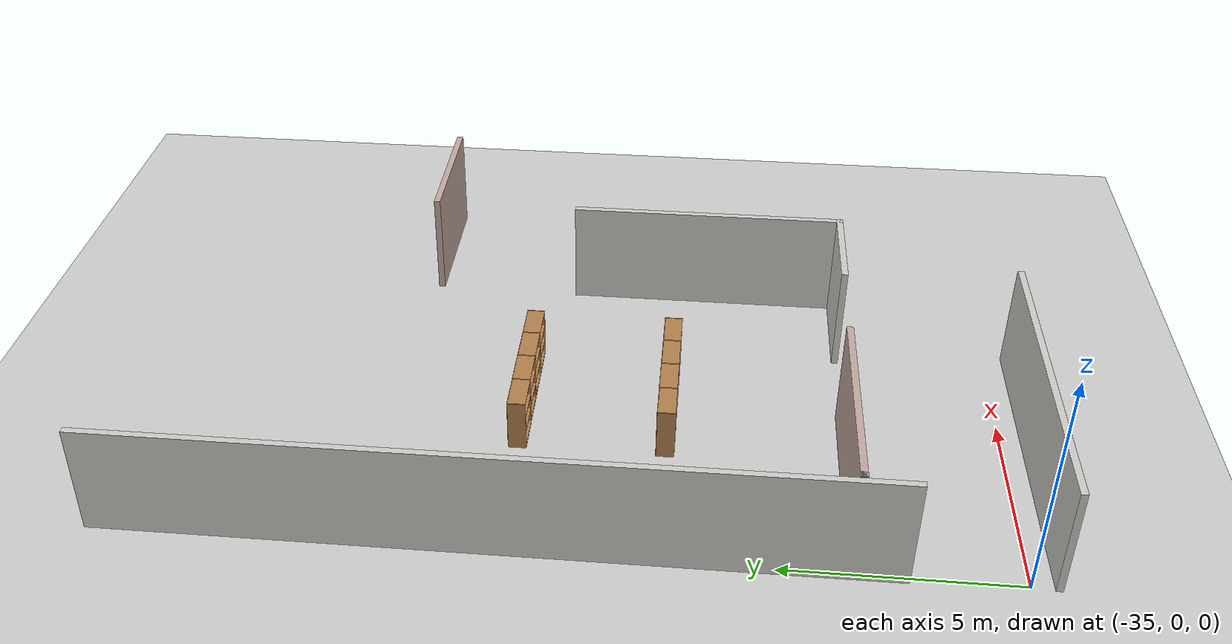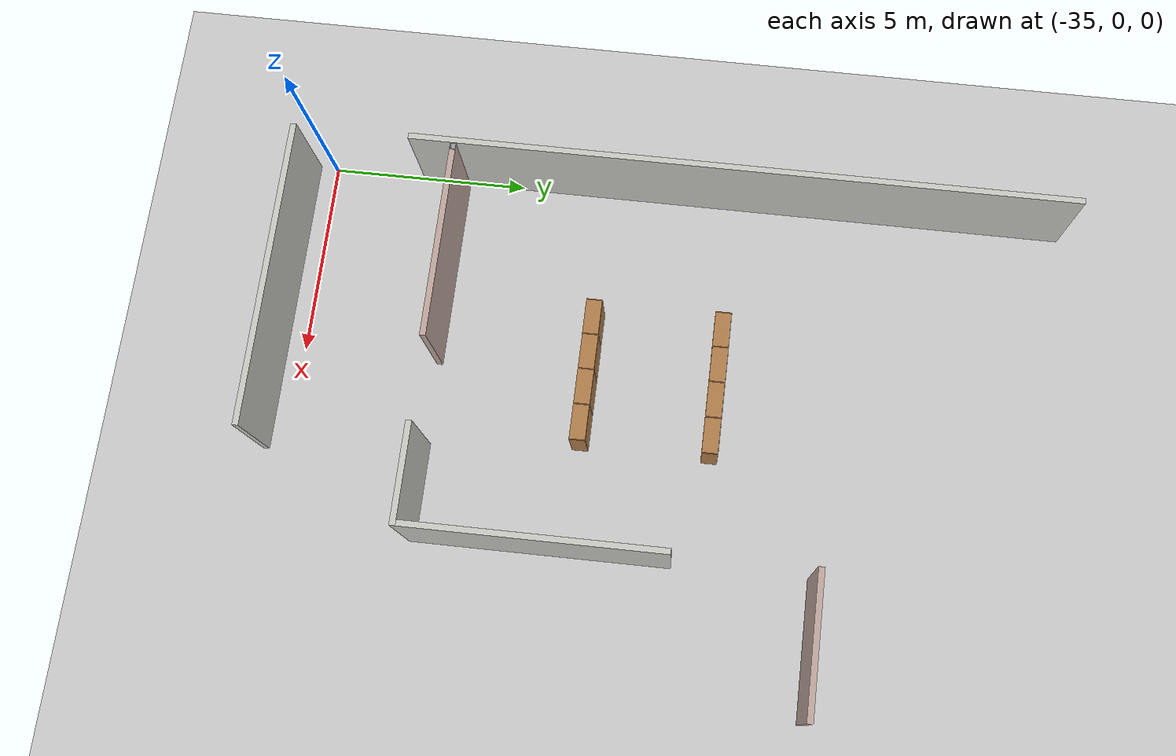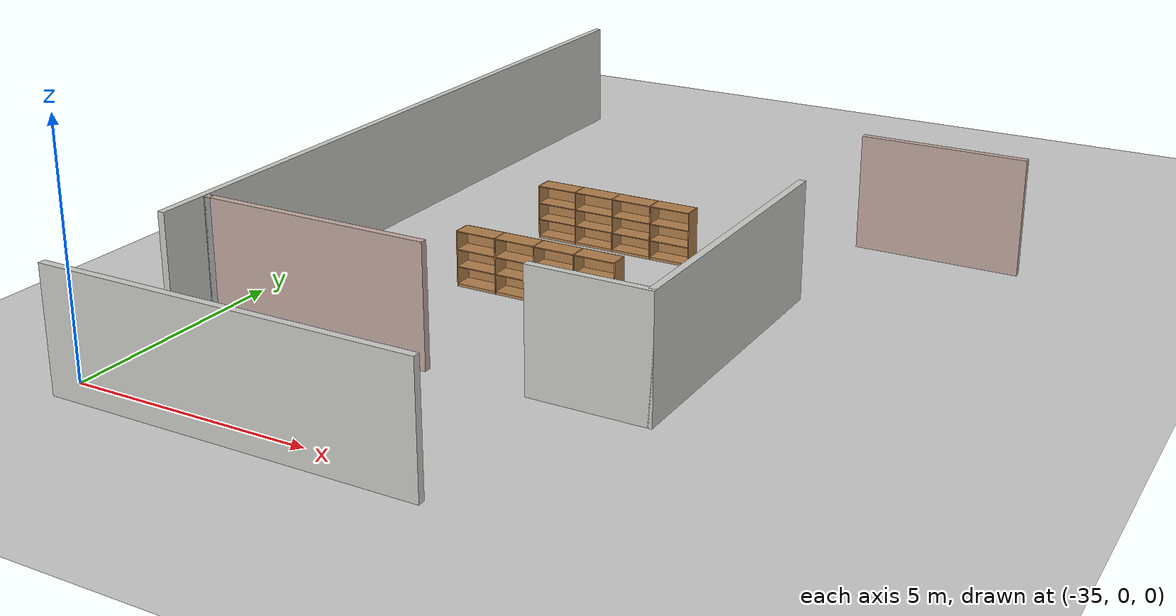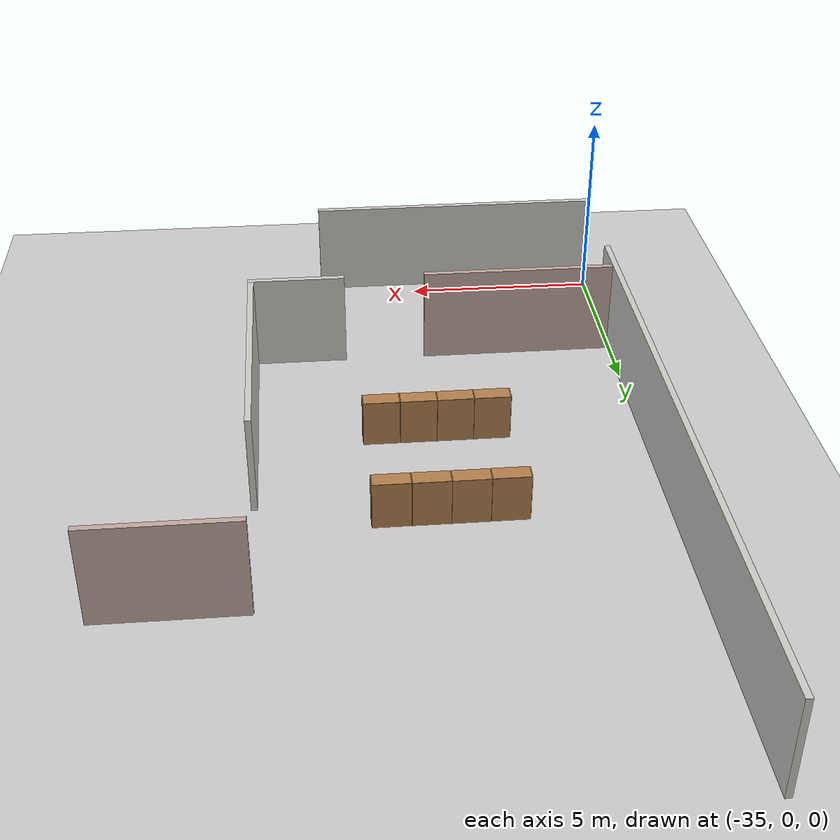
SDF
<sdf version="1.6">
 <world name="default">
  <model name="ground_plane">
   <static>1</static>
   <link name="link">
    <collision name="collision">
     <geometry><plane><normal>0 0 1</normal><size>100 100</size></plane></geometry>
     <surface><friction><ode><mu>100</mu><mu2>50</mu2></ode></friction></surface>
    </collision>
    <visual name="visual">
     <cast_shadows>0</cast_shadows>
     <geometry><plane><normal>0 0 1</normal><size>100 100</size></plane></geometry>
     <material>
      <script><uri>file://media/materials/scripts/gazebo.material</uri><name>Gazebo/Grey</name></script>
     </material>
    </visual>
   </link>
  </model>
  <model name="floor">
   <link name="Wall_13">
    <pose>-36.3 12 0 0 0 -1.5708</pose>
    <visual name="Wall_13_Visual">
     <pose>0 0 1.25 0 -0 0</pose>
     <geometry><box><size>16.75 0.15 2.5</size></box></geometry>
     <material>
      <script><uri>file://media/materials/scripts/gazebo.material</uri><name>Gazebo/CeilingTiled</name></script>
      <ambient>0.760784 0.662745 0.627451 1</ambient>
     </material>
     <meta><layer>0</layer></meta>
    </visual>
    <collision name="Wall_13_Collision">
     <pose>0 0 1.25 0 -0 0</pose>
     <geometry><box><size>16.75 0.15 2.5</size></box></geometry>
     <surface>
      <friction>
       <ode><mu>1</mu><mu2>1</mu2><fdir1>0 0 0</fdir1><slip1>0</slip1><slip2>0</slip2></ode>
       <torsional>
        <coefficient>1</coefficient>
        <patch_radius>0</patch_radius>
        <surface_radius>0</surface_radius>
        <use_patch_radius>1</use_patch_radius>
        <ode><slip>0</slip></ode>
       </torsional>
      </friction>
      <bounce><restitution_coefficient>0</restitution_coefficient><threshold>1e+06</threshold></bounce>
      <contact>
       <collide_without_contact>0</collide_without_contact>
       <collide_without_contact_bitmask>1</collide_without_contact_bitmask>
       <collide_bitmask>1</collide_bitmask>
       <ode>
        <soft_cfm>0</soft_cfm>
        <soft_erp>0.2</soft_erp>
        <kp>1e+13</kp>
        <kd>1</kd>
        <max_vel>0.01</max_vel>
        <min_depth>0</min_depth>
       </ode>
       <bullet>
        <split_impulse>1</split_impulse>
        <split_impulse_penetration_threshold>-0.01</split_impulse_penetration_threshold>
        <soft_cfm>0</soft_cfm>
        <soft_erp>0.2</soft_erp>
        <kp>1e+13</kp>
        <kd>1</kd>
       </bullet>
      </contact>
     </surface>
    </collision>
   </link>
   <link name="Wall_17">
    <pose>-33.7057 4.7615 0 0 -0 3.14159</pose>
    <visual name="Wall_17_Visual">
     <pose>0 0 1.25 0 -0 0</pose>
     <geometry><box><size>5 0.15 2.5</size></box></geometry>
     <material>
      <script><uri>file://media/materials/scripts/gazebo.material</uri><name>Gazebo/Grey</name></script>
      <ambient>0.760784 0.662745 0.627451 1</ambient>
     </material>
     <meta><layer>0</layer></meta>
    </visual>
    <collision name="Wall_17_Collision">
     <pose>0 0 1.25 0 -0 0</pose>
     <geometry><box><size>5 0.15 2.5</size></box></geometry>
     <surface>
      <friction>
       <ode><mu>1</mu><mu2>1</mu2><fdir1>0 0 0</fdir1><slip1>0</slip1><slip2>0</slip2></ode>
       <torsional>
        <coefficient>1</coefficient>
        <patch_radius>0</patch_radius>
        <surface_radius>0</surface_radius>
        <use_patch_radius>1</use_patch_radius>
        <ode><slip>0</slip></ode>
       </torsional>
      </friction>
      <bounce><restitution_coefficient>0</restitution_coefficient><threshold>1e+06</threshold></bounce>
      <contact>
       <collide_without_contact>0</collide_without_contact>
       <collide_without_contact_bitmask>1</collide_without_contact_bitmask>
       <collide_bitmask>1</collide_bitmask>
       <ode>
        <soft_cfm>0</soft_cfm>
        <soft_erp>0.2</soft_erp>
        <kp>1e+13</kp>
        <kd>1</kd>
        <max_vel>0.01</max_vel>
        <min_depth>0</min_depth>
       </ode>
       <bullet>
        <split_impulse>1</split_impulse>
        <split_impulse_penetration_threshold>-0.01</split_impulse_penetration_threshold>
        <soft_cfm>0</soft_cfm>
        <soft_erp>0.2</soft_erp>
        <kp>1e+13</kp>
        <kd>1</kd>
       </bullet>
      </contact>
     </surface>
    </collision>
   </link>
   <link name="Wall_18">
    <pose>-36.1307 4.7615 0 0 -0 0</pose>
    <visual name="Wall_18_Visual">
     <pose>0 0 1.25 0 -0 0</pose>
     <geometry><box><size>0.15 0.15 2.5</size></box></geometry>
     <material>
      <script><uri>file://media/materials/scripts/gazebo.material</uri><name>Gazebo/Grey</name></script>
      <ambient>1 1 1 1</ambient>
     </material>
     <meta><layer>0</layer></meta>
    </visual>
    <collision name="Wall_18_Collision">
     <pose>0 0 1.25 0 -0 0</pose>
     <geometry><box><size>0.15 0.15 2.5</size></box></geometry>
     <surface>
      <friction>
       <ode><mu>1</mu><mu2>1</mu2><fdir1>0 0 0</fdir1><slip1>0</slip1><slip2>0</slip2></ode>
       <torsional>
        <coefficient>1</coefficient>
        <patch_radius>0</patch_radius>
        <surface_radius>0</surface_radius>
        <use_patch_radius>1</use_patch_radius>
        <ode><slip>0</slip></ode>
       </torsional>
      </friction>
      <bounce><restitution_coefficient>0</restitution_coefficient><threshold>1e+06</threshold></bounce>
      <contact>
       <collide_without_contact>0</collide_without_contact>
       <collide_without_contact_bitmask>1</collide_without_contact_bitmask>
       <collide_bitmask>1</collide_bitmask>
       <ode>
        <soft_cfm>0</soft_cfm>
        <soft_erp>0.2</soft_erp>
        <kp>1e+13</kp>
        <kd>1</kd>
        <max_vel>0.01</max_vel>
        <min_depth>0</min_depth>
       </ode>
       <bullet>
        <split_impulse>1</split_impulse>
        <split_impulse_penetration_threshold>-0.01</split_impulse_penetration_threshold>
        <soft_cfm>0</soft_cfm>
        <soft_erp>0.2</soft_erp>
        <kp>1e+13</kp>
        <kd>1</kd>
       </bullet>
      </contact>
     </surface>
    </collision>
   </link>
   <link name="Wall_19">
    <pose>-36.1257 4.7615 0 0 -0 0</pose>
    <visual name="Wall_19_Visual">
     <pose>0 0 1.25 0 -0 0</pose>
     <geometry><box><size>0.16 0.15 2.5</size></box></geometry>
     <material>
      <script><uri>file://media/materials/scripts/gazebo.material</uri><name>Gazebo/Grey</name></script>
      <ambient>1 1 1 1</ambient>
     </material>
     <meta><layer>0</layer></meta>
    </visual>
    <collision name="Wall_19_Collision">
     <pose>0 0 1.25 0 -0 0</pose>
     <geometry><box><size>0.16 0.15 2.5</size></box></geometry>
     <surface>
      <friction>
       <ode><mu>1</mu><mu2>1</mu2><fdir1>0 0 0</fdir1><slip1>0</slip1><slip2>0</slip2></ode>
       <torsional>
        <coefficient>1</coefficient>
        <patch_radius>0</patch_radius>
        <surface_radius>0</surface_radius>
        <use_patch_radius>1</use_patch_radius>
        <ode><slip>0</slip></ode>
       </torsional>
      </friction>
      <bounce><restitution_coefficient>0</restitution_coefficient><threshold>1e+06</threshold></bounce>
      <contact>
       <collide_without_contact>0</collide_without_contact>
       <collide_without_contact_bitmask>1</collide_without_contact_bitmask>
       <collide_bitmask>1</collide_bitmask>
       <ode>
        <soft_cfm>0</soft_cfm>
        <soft_erp>0.2</soft_erp>
        <kp>1e+13</kp>
        <kd>1</kd>
        <max_vel>0.01</max_vel>
        <min_depth>0</min_depth>
       </ode>
       <bullet>
        <split_impulse>1</split_impulse>
        <split_impulse_penetration_threshold>-0.01</split_impulse_penetration_threshold>
        <soft_cfm>0</soft_cfm>
        <soft_erp>0.2</soft_erp>
        <kp>1e+13</kp>
        <kd>1</kd>
       </bullet>
      </contact>
     </surface>
    </collision>
   </link>
   <link name="Wall_20">
    <pose>-36.1257 4.7615 0 0 -0 3.14159</pose>
    <visual name="Wall_20_Visual">
     <pose>0 0 1.25 0 -0 0</pose>
     <geometry><box><size>0.16 0.15 2.5</size></box></geometry>
     <material>
      <script><uri>file://media/materials/scripts/gazebo.material</uri><name>Gazebo/Grey</name></script>
      <ambient>1 1 1 1</ambient>
     </material>
     <meta><layer>0</layer></meta>
    </visual>
    <collision name="Wall_20_Collision">
     <pose>0 0 1.25 0 -0 0</pose>
     <geometry><box><size>0.16 0.15 2.5</size></box></geometry>
     <surface>
      <friction>
       <ode><mu>1</mu><mu2>1</mu2><fdir1>0 0 0</fdir1><slip1>0</slip1><slip2>0</slip2></ode>
       <torsional>
        <coefficient>1</coefficient>
        <patch_radius>0</patch_radius>
        <surface_radius>0</surface_radius>
        <use_patch_radius>1</use_patch_radius>
        <ode><slip>0</slip></ode>
       </torsional>
      </friction>
      <bounce><restitution_coefficient>0</restitution_coefficient><threshold>1e+06</threshold></bounce>
      <contact>
       <collide_without_contact>0</collide_without_contact>
       <collide_without_contact_bitmask>1</collide_without_contact_bitmask>
       <collide_bitmask>1</collide_bitmask>
       <ode>
        <soft_cfm>0</soft_cfm>
        <soft_erp>0.2</soft_erp>
        <kp>1e+13</kp>
        <kd>1</kd>
        <max_vel>0.01</max_vel>
        <min_depth>0</min_depth>
       </ode>
       <bullet>
        <split_impulse>1</split_impulse>
        <split_impulse_penetration_threshold>-0.01</split_impulse_penetration_threshold>
        <soft_cfm>0</soft_cfm>
        <soft_erp>0.2</soft_erp>
        <kp>1e+13</kp>
        <kd>1</kd>
       </bullet>
      </contact>
     </surface>
    </collision>
   </link>
   <link name="Wall_22">
    <pose>-32.4403 0.737728 0 0 -0 0</pose>
    <visual name="Wall_22_Visual">
     <pose>0 0 1.25 0 -0 0</pose>
     <geometry><box><size>7.75 0.15 2.5</size></box></geometry>
     <material>
      <script><uri>file://media/materials/scripts/gazebo.material</uri><name>Gazebo/CeilingTiled</name></script>
      <ambient>0.760784 0.662745 0.627451 1</ambient>
     </material>
     <meta><layer>0</layer></meta>
    </visual>
    <collision name="Wall_22_Collision">
     <pose>0 0 1.25 0 -0 0</pose>
     <geometry><box><size>7.75 0.15 2.5</size></box></geometry>
     <surface>
      <friction>
       <ode><mu>1</mu><mu2>1</mu2><fdir1>0 0 0</fdir1><slip1>0</slip1><slip2>0</slip2></ode>
       <torsional>
        <coefficient>1</coefficient>
        <patch_radius>0</patch_radius>
        <surface_radius>0</surface_radius>
        <use_patch_radius>1</use_patch_radius>
        <ode><slip>0</slip></ode>
       </torsional>
      </friction>
      <bounce><restitution_coefficient>0</restitution_coefficient><threshold>1e+06</threshold></bounce>
      <contact>
       <collide_without_contact>0</collide_without_contact>
       <collide_without_contact_bitmask>1</collide_without_contact_bitmask>
       <collide_bitmask>1</collide_bitmask>
       <ode>
        <soft_cfm>0</soft_cfm>
        <soft_erp>0.2</soft_erp>
        <kp>1e+13</kp>
        <kd>1</kd>
        <max_vel>0.01</max_vel>
        <min_depth>0</min_depth>
       </ode>
       <bullet>
        <split_impulse>1</split_impulse>
        <split_impulse_penetration_threshold>-0.01</split_impulse_penetration_threshold>
        <soft_cfm>0</soft_cfm>
        <soft_erp>0.2</soft_erp>
        <kp>1e+13</kp>
        <kd>1</kd>
       </bullet>
      </contact>
     </surface>
    </collision>
   </link>
   <link name="Wall_30">
    <pose>-27.8599 4.7615 0 0 -0 0</pose>
    <visual name="Wall_30_Visual">
     <pose>0 0 1.25 0 -0 0</pose>
     <geometry><box><size>2.5 0.15 2.5</size></box></geometry>
     <material>
      <script><uri>file://media/materials/scripts/gazebo.material</uri><name>Gazebo/CeilingTiled</name></script>
      <ambient>0.760784 0.662745 0.627451 1</ambient>
     </material>
     <meta><layer>0</layer></meta>
    </visual>
    <collision name="Wall_30_Collision">
     <pose>0 0 1.25 0 -0 0</pose>
     <geometry><box><size>2.5 0.15 2.5</size></box></geometry>
     <surface>
      <friction>
       <ode><mu>1</mu><mu2>1</mu2><fdir1>0 0 0</fdir1><slip1>0</slip1><slip2>0</slip2></ode>
       <torsional>
        <coefficient>1</coefficient>
        <patch_radius>0</patch_radius>
        <surface_radius>0</surface_radius>
        <use_patch_radius>1</use_patch_radius>
        <ode><slip>0</slip></ode>
       </torsional>
      </friction>
      <bounce><restitution_coefficient>0</restitution_coefficient><threshold>1e+06</threshold></bounce>
      <contact>
       <collide_without_contact>0</collide_without_contact>
       <collide_without_contact_bitmask>1</collide_without_contact_bitmask>
       <collide_bitmask>1</collide_bitmask>
       <ode>
        <soft_cfm>0</soft_cfm>
        <soft_erp>0.2</soft_erp>
        <kp>1e+13</kp>
        <kd>1</kd>
        <max_vel>0.01</max_vel>
        <min_depth>0</min_depth>
       </ode>
       <bullet>
        <split_impulse>1</split_impulse>
        <split_impulse_penetration_threshold>-0.01</split_impulse_penetration_threshold>
        <soft_cfm>0</soft_cfm>
        <soft_erp>0.2</soft_erp>
        <kp>1e+13</kp>
        <kd>1</kd>
       </bullet>
      </contact>
     </surface>
    </collision>
   </link>
   <link name="Wall_31">
    <pose>-26.6849 7.9365 0 0 -0 1.5708</pose>
    <visual name="Wall_31_Visual">
     <pose>0 0 1.25 0 -0 0</pose>
     <geometry><box><size>6.5 0.15 2.5</size></box></geometry>
     <material>
      <script><uri>file://media/materials/scripts/gazebo.material</uri><name>Gazebo/CeilingTiled</name></script>
      <ambient>0.760784 0.662745 0.627451 1</ambient>
     </material>
     <meta><layer>0</layer></meta>
    </visual>
    <collision name="Wall_31_Collision">
     <pose>0 0 1.25 0 -0 0</pose>
     <geometry><box><size>6.5 0.15 2.5</size></box></geometry>
     <surface>
      <friction>
       <ode><mu>1</mu><mu2>1</mu2><fdir1>0 0 0</fdir1><slip1>0</slip1><slip2>0</slip2></ode>
       <torsional>
        <coefficient>1</coefficient>
        <patch_radius>0</patch_radius>
        <surface_radius>0</surface_radius>
        <use_patch_radius>1</use_patch_radius>
        <ode><slip>0</slip></ode>
       </torsional>
      </friction>
      <bounce><restitution_coefficient>0</restitution_coefficient><threshold>1e+06</threshold></bounce>
      <contact>
       <collide_without_contact>0</collide_without_contact>
       <collide_without_contact_bitmask>1</collide_without_contact_bitmask>
       <collide_bitmask>1</collide_bitmask>
       <ode>
        <soft_cfm>0</soft_cfm>
        <soft_erp>0.2</soft_erp>
        <kp>1e+13</kp>
        <kd>1</kd>
        <max_vel>0.01</max_vel>
        <min_depth>0</min_depth>
       </ode>
       <bullet>
        <split_impulse>1</split_impulse>
        <split_impulse_penetration_threshold>-0.01</split_impulse_penetration_threshold>
        <soft_cfm>0</soft_cfm>
        <soft_erp>0.2</soft_erp>
        <kp>1e+13</kp>
        <kd>1</kd>
       </bullet>
      </contact>
     </surface>
    </collision>
   </link>
   <link name="Wall_58">
    <pose>-24.9523 14.6342 0 0 -0 0</pose>
    <visual name="Wall_58_Visual">
     <pose>0 0 1.25 0 -0 0</pose>
     <geometry><box><size>3.5 0.15 2.5</size></box></geometry>
     <material>
      <script><uri>file://media/materials/scripts/gazebo.material</uri><name>Gazebo/Grey</name></script>
      <ambient>0.760784 0.662745 0.627451 1</ambient>
     </material>
     <meta><layer>0</layer></meta>
    </visual>
    <collision name="Wall_58_Collision">
     <pose>0 0 1.25 0 -0 0</pose>
     <geometry><box><size>3.5 0.15 2.5</size></box></geometry>
     <surface>
      <friction>
       <ode><mu>1</mu><mu2>1</mu2><fdir1>0 0 0</fdir1><slip1>0</slip1><slip2>0</slip2></ode>
       <torsional>
        <coefficient>1</coefficient>
        <patch_radius>0</patch_radius>
        <surface_radius>0</surface_radius>
        <use_patch_radius>1</use_patch_radius>
        <ode><slip>0</slip></ode>
       </torsional>
      </friction>
      <bounce><restitution_coefficient>0</restitution_coefficient><threshold>1e+06</threshold></bounce>
      <contact>
       <collide_without_contact>0</collide_without_contact>
       <collide_without_contact_bitmask>1</collide_without_contact_bitmask>
       <collide_bitmask>1</collide_bitmask>
       <ode>
        <soft_cfm>0</soft_cfm>
        <soft_erp>0.2</soft_erp>
        <kp>1e+13</kp>
        <kd>1</kd>
        <max_vel>0.01</max_vel>
        <min_depth>0</min_depth>
       </ode>
       <bullet>
        <split_impulse>1</split_impulse>
        <split_impulse_penetration_threshold>-0.01</split_impulse_penetration_threshold>
        <soft_cfm>0</soft_cfm>
        <soft_erp>0.2</soft_erp>
        <kp>1e+13</kp>
        <kd>1</kd>
       </bullet>
      </contact>
     </surface>
    </collision>
   </link>
   <static>1</static>
   <pose>1.26361 -1.27025 0 0 -0 0</pose>
  </model>
  <model name="Bookshelf-4_clone_28">
   <model name="bookshelf">
    <static>1</static>
    <link name="link">
     <inertial><mass>1</mass></inertial>
     <collision name="back">
      <pose>0 0.005 0.6 0 -0 0</pose>
      <geometry><box><size>0.9 0.01 1.2</size></box></geometry>
     </collision>
     <visual name="visual1">
      <pose>0 0.005 0.6 0 -0 0</pose>
      <geometry><box><size>0.9 0.01 1.2</size></box></geometry>
      <material>
       <script><uri>file://media/materials/scripts/gazebo.material</uri><name>Gazebo/Wood</name></script>
      </material>
     </visual>
     <collision name="left_side">
      <pose>0.45 -0.195 0.6 0 -0 0</pose>
      <geometry><box><size>0.02 0.4 1.2</size></box></geometry>
     </collision>
     <visual name="visual2">
      <pose>0.45 -0.195 0.6 0 -0 0</pose>
      <geometry><box><size>0.02 0.4 1.2</size></box></geometry>
      <material>
       <script><uri>file://media/materials/scripts/gazebo.material</uri><name>Gazebo/Wood</name></script>
      </material>
     </visual>
     <collision name="right_side">
      <pose>-0.45 -0.195 0.6 0 -0 0</pose>
      <geometry><box><size>0.02 0.4 1.2</size></box></geometry>
     </collision>
     <visual name="visual3">
      <pose>-0.45 -0.195 0.6 0 -0 0</pose>
      <geometry><box><size>0.02 0.4 1.2</size></box></geometry>
      <material>
       <script><uri>file://media/materials/scripts/gazebo.material</uri><name>Gazebo/Wood</name></script>
      </material>
     </visual>
     <collision name="bottom">
      <pose>0 -0.195 0.03 0 -0 0</pose>
      <geometry><box><size>0.88 0.4 0.06</size></box></geometry>
     </collision>
     <visual name="visual4">
      <pose>0 -0.195 0.03 0 -0 0</pose>
      <geometry><box><size>0.88 0.4 0.06</size></box></geometry>
      <material>
       <script><uri>file://media/materials/scripts/gazebo.material</uri><name>Gazebo/Wood</name></script>
      </material>
     </visual>
     <collision name="top">
      <pose>0 -0.195 1.19 0 -0 0</pose>
      <geometry><box><size>0.88 0.4 0.02</size></box></geometry>
     </collision>
     <visual name="visual5">
      <pose>0 -0.195 1.19 0 -0 0</pose>
      <geometry><box><size>0.88 0.4 0.02</size></box></geometry>
      <material>
       <script><uri>file://media/materials/scripts/gazebo.material</uri><name>Gazebo/Wood</name></script>
      </material>
     </visual>
     <collision name="low_shelf">
      <pose>0 -0.195 0.43 0 -0 0</pose>
      <geometry><box><size>0.88 0.4 0.02</size></box></geometry>
     </collision>
     <visual name="visual6">
      <pose>0 -0.195 0.43 0 -0 0</pose>
      <geometry><box><size>0.88 0.4 0.02</size></box></geometry>
      <material>
       <script><uri>file://media/materials/scripts/gazebo.material</uri><name>Gazebo/Wood</name></script>
      </material>
     </visual>
     <collision name="high_shelf">
      <pose>0 -0.195 0.8 0 -0 0</pose>
      <geometry><box><size>0.88 0.4 0.02</size></box></geometry>
     </collision>
     <visual name="visual7">
      <pose>0 -0.195 0.8 0 -0 0</pose>
      <geometry><box><size>0.88 0.4 0.02</size></box></geometry>
      <material>
       <script><uri>file://media/materials/scripts/gazebo.material</uri><name>Gazebo/Wood</name></script>
      </material>
     </visual>
    </link>
    <pose>-1.35671 -0.002097 0 0 -0 0</pose>
   </model>
   <model name="bookshelf_0">
    <static>1</static>
    <link name="link">
     <inertial><mass>1</mass></inertial>
     <collision name="back">
      <pose>0 0.005 0.6 0 -0 0</pose>
      <geometry><box><size>0.9 0.01 1.2</size></box></geometry>
     </collision>
     <visual name="visual1">
      <pose>0 0.005 0.6 0 -0 0</pose>
      <geometry><box><size>0.9 0.01 1.2</size></box></geometry>
      <material>
       <script><uri>file://media/materials/scripts/gazebo.material</uri><name>Gazebo/Wood</name></script>
      </material>
     </visual>
     <collision name="left_side">
      <pose>0.45 -0.195 0.6 0 -0 0</pose>
      <geometry><box><size>0.02 0.4 1.2</size></box></geometry>
     </collision>
     <visual name="visual2">
      <pose>0.45 -0.195 0.6 0 -0 0</pose>
      <geometry><box><size>0.02 0.4 1.2</size></box></geometry>
      <material>
       <script><uri>file://media/materials/scripts/gazebo.material</uri><name>Gazebo/Wood</name></script>
      </material>
     </visual>
     <collision name="right_side">
      <pose>-0.45 -0.195 0.6 0 -0 0</pose>
      <geometry><box><size>0.02 0.4 1.2</size></box></geometry>
     </collision>
     <visual name="visual3">
      <pose>-0.45 -0.195 0.6 0 -0 0</pose>
      <geometry><box><size>0.02 0.4 1.2</size></box></geometry>
      <material>
       <script><uri>file://media/materials/scripts/gazebo.material</uri><name>Gazebo/Wood</name></script>
      </material>
     </visual>
     <collision name="bottom">
      <pose>0 -0.195 0.03 0 -0 0</pose>
      <geometry><box><size>0.88 0.4 0.06</size></box></geometry>
     </collision>
     <visual name="visual4">
      <pose>0 -0.195 0.03 0 -0 0</pose>
      <geometry><box><size>0.88 0.4 0.06</size></box></geometry>
      <material>
       <script><uri>file://media/materials/scripts/gazebo.material</uri><name>Gazebo/Wood</name></script>
      </material>
     </visual>
     <collision name="top">
      <pose>0 -0.195 1.19 0 -0 0</pose>
      <geometry><box><size>0.88 0.4 0.02</size></box></geometry>
     </collision>
     <visual name="visual5">
      <pose>0 -0.195 1.19 0 -0 0</pose>
      <geometry><box><size>0.88 0.4 0.02</size></box></geometry>
      <material>
       <script><uri>file://media/materials/scripts/gazebo.material</uri><name>Gazebo/Wood</name></script>
      </material>
     </visual>
     <collision name="low_shelf">
      <pose>0 -0.195 0.43 0 -0 0</pose>
      <geometry><box><size>0.88 0.4 0.02</size></box></geometry>
     </collision>
     <visual name="visual6">
      <pose>0 -0.195 0.43 0 -0 0</pose>
      <geometry><box><size>0.88 0.4 0.02</size></box></geometry>
      <material>
       <script><uri>file://media/materials/scripts/gazebo.material</uri><name>Gazebo/Wood</name></script>
      </material>
     </visual>
     <collision name="high_shelf">
      <pose>0 -0.195 0.8 0 -0 0</pose>
      <geometry><box><size>0.88 0.4 0.02</size></box></geometry>
     </collision>
     <visual name="visual7">
      <pose>0 -0.195 0.8 0 -0 0</pose>
      <geometry><box><size>0.88 0.4 0.02</size></box></geometry>
      <material>
       <script><uri>file://media/materials/scripts/gazebo.material</uri><name>Gazebo/Wood</name></script>
      </material>
     </visual>
    </link>
    <pose>-0.452974 0.001386 0 0 -0 0</pose>
   </model>
   <model name="bookshelf_1">
    <static>1</static>
    <link name="link">
     <inertial><mass>1</mass></inertial>
     <collision name="back">
      <pose>0 0.005 0.6 0 -0 0</pose>
      <geometry><box><size>0.9 0.01 1.2</size></box></geometry>
     </collision>
     <visual name="visual1">
      <pose>0 0.005 0.6 0 -0 0</pose>
      <geometry><box><size>0.9 0.01 1.2</size></box></geometry>
      <material>
       <script><uri>file://media/materials/scripts/gazebo.material</uri><name>Gazebo/Wood</name></script>
      </material>
     </visual>
     <collision name="left_side">
      <pose>0.45 -0.195 0.6 0 -0 0</pose>
      <geometry><box><size>0.02 0.4 1.2</size></box></geometry>
     </collision>
     <visual name="visual2">
      <pose>0.45 -0.195 0.6 0 -0 0</pose>
      <geometry><box><size>0.02 0.4 1.2</size></box></geometry>
      <material>
       <script><uri>file://media/materials/scripts/gazebo.material</uri><name>Gazebo/Wood</name></script>
      </material>
     </visual>
     <collision name="right_side">
      <pose>-0.45 -0.195 0.6 0 -0 0</pose>
      <geometry><box><size>0.02 0.4 1.2</size></box></geometry>
     </collision>
     <visual name="visual3">
      <pose>-0.45 -0.195 0.6 0 -0 0</pose>
      <geometry><box><size>0.02 0.4 1.2</size></box></geometry>
      <material>
       <script><uri>file://media/materials/scripts/gazebo.material</uri><name>Gazebo/Wood</name></script>
      </material>
     </visual>
     <collision name="bottom">
      <pose>0 -0.195 0.03 0 -0 0</pose>
      <geometry><box><size>0.88 0.4 0.06</size></box></geometry>
     </collision>
     <visual name="visual4">
      <pose>0 -0.195 0.03 0 -0 0</pose>
      <geometry><box><size>0.88 0.4 0.06</size></box></geometry>
      <material>
       <script><uri>file://media/materials/scripts/gazebo.material</uri><name>Gazebo/Wood</name></script>
      </material>
     </visual>
     <collision name="top">
      <pose>0 -0.195 1.19 0 -0 0</pose>
      <geometry><box><size>0.88 0.4 0.02</size></box></geometry>
     </collision>
     <visual name="visual5">
      <pose>0 -0.195 1.19 0 -0 0</pose>
      <geometry><box><size>0.88 0.4 0.02</size></box></geometry>
      <material>
       <script><uri>file://media/materials/scripts/gazebo.material</uri><name>Gazebo/Wood</name></script>
      </material>
     </visual>
     <collision name="low_shelf">
      <pose>0 -0.195 0.43 0 -0 0</pose>
      <geometry><box><size>0.88 0.4 0.02</size></box></geometry>
     </collision>
     <visual name="visual6">
      <pose>0 -0.195 0.43 0 -0 0</pose>
      <geometry><box><size>0.88 0.4 0.02</size></box></geometry>
      <material>
       <script><uri>file://media/materials/scripts/gazebo.material</uri><name>Gazebo/Wood</name></script>
      </material>
     </visual>
     <collision name="high_shelf">
      <pose>0 -0.195 0.8 0 -0 0</pose>
      <geometry><box><size>0.88 0.4 0.02</size></box></geometry>
     </collision>
     <visual name="visual7">
      <pose>0 -0.195 0.8 0 -0 0</pose>
      <geometry><box><size>0.88 0.4 0.02</size></box></geometry>
      <material>
       <script><uri>file://media/materials/scripts/gazebo.material</uri><name>Gazebo/Wood</name></script>
      </material>
     </visual>
    </link>
    <pose>0.450456 0.000733 0 0 -0 0</pose>
   </model>
   <model name="bookshelf_2">
    <static>1</static>
    <link name="link">
     <inertial><mass>1</mass></inertial>
     <collision name="back">
      <pose>0 0.005 0.6 0 -0 0</pose>
      <geometry><box><size>0.9 0.01 1.2</size></box></geometry>
     </collision>
     <visual name="visual1">
      <pose>0 0.005 0.6 0 -0 0</pose>
      <geometry><box><size>0.9 0.01 1.2</size></box></geometry>
      <material>
       <script><uri>file://media/materials/scripts/gazebo.material</uri><name>Gazebo/Wood</name></script>
      </material>
     </visual>
     <collision name="left_side">
      <pose>0.45 -0.195 0.6 0 -0 0</pose>
      <geometry><box><size>0.02 0.4 1.2</size></box></geometry>
     </collision>
     <visual name="visual2">
      <pose>0.45 -0.195 0.6 0 -0 0</pose>
      <geometry><box><size>0.02 0.4 1.2</size></box></geometry>
      <material>
       <script><uri>file://media/materials/scripts/gazebo.material</uri><name>Gazebo/Wood</name></script>
      </material>
     </visual>
     <collision name="right_side">
      <pose>-0.45 -0.195 0.6 0 -0 0</pose>
      <geometry><box><size>0.02 0.4 1.2</size></box></geometry>
     </collision>
     <visual name="visual3">
      <pose>-0.45 -0.195 0.6 0 -0 0</pose>
      <geometry><box><size>0.02 0.4 1.2</size></box></geometry>
      <material>
       <script><uri>file://media/materials/scripts/gazebo.material</uri><name>Gazebo/Wood</name></script>
      </material>
     </visual>
     <collision name="bottom">
      <pose>0 -0.195 0.03 0 -0 0</pose>
      <geometry><box><size>0.88 0.4 0.06</size></box></geometry>
     </collision>
     <visual name="visual4">
      <pose>0 -0.195 0.03 0 -0 0</pose>
      <geometry><box><size>0.88 0.4 0.06</size></box></geometry>
      <material>
       <script><uri>file://media/materials/scripts/gazebo.material</uri><name>Gazebo/Wood</name></script>
      </material>
     </visual>
     <collision name="top">
      <pose>0 -0.195 1.19 0 -0 0</pose>
      <geometry><box><size>0.88 0.4 0.02</size></box></geometry>
     </collision>
     <visual name="visual5">
      <pose>0 -0.195 1.19 0 -0 0</pose>
      <geometry><box><size>0.88 0.4 0.02</size></box></geometry>
      <material>
       <script><uri>file://media/materials/scripts/gazebo.material</uri><name>Gazebo/Wood</name></script>
      </material>
     </visual>
     <collision name="low_shelf">
      <pose>0 -0.195 0.43 0 -0 0</pose>
      <geometry><box><size>0.88 0.4 0.02</size></box></geometry>
     </collision>
     <visual name="visual6">
      <pose>0 -0.195 0.43 0 -0 0</pose>
      <geometry><box><size>0.88 0.4 0.02</size></box></geometry>
      <material>
       <script><uri>file://media/materials/scripts/gazebo.material</uri><name>Gazebo/Wood</name></script>
      </material>
     </visual>
     <collision name="high_shelf">
      <pose>0 -0.195 0.8 0 -0 0</pose>
      <geometry><box><size>0.88 0.4 0.02</size></box></geometry>
     </collision>
     <visual name="visual7">
      <pose>0 -0.195 0.8 0 -0 0</pose>
      <geometry><box><size>0.88 0.4 0.02</size></box></geometry>
      <material>
       <script><uri>file://media/materials/scripts/gazebo.material</uri><name>Gazebo/Wood</name></script>
      </material>
     </visual>
    </link>
    <pose>1.35922 -1.7e-05 0 0 -0 0</pose>
   </model>
   <static>0</static>
   <pose>-29.8888 10.7801 0 0 -0 0</pose>
  </model>
  <model name="Bookshelf-4_clone_29">
   <model name="bookshelf">
    <static>1</static>
    <link name="link">
     <inertial><mass>1</mass></inertial>
     <collision name="back">
      <pose>0 0.005 0.6 0 -0 0</pose>
      <geometry><box><size>0.9 0.01 1.2</size></box></geometry>
     </collision>
     <visual name="visual1">
      <pose>0 0.005 0.6 0 -0 0</pose>
      <geometry><box><size>0.9 0.01 1.2</size></box></geometry>
      <material>
       <script><uri>file://media/materials/scripts/gazebo.material</uri><name>Gazebo/Wood</name></script>
      </material>
     </visual>
     <collision name="left_side">
      <pose>0.45 -0.195 0.6 0 -0 0</pose>
      <geometry><box><size>0.02 0.4 1.2</size></box></geometry>
     </collision>
     <visual name="visual2">
      <pose>0.45 -0.195 0.6 0 -0 0</pose>
      <geometry><box><size>0.02 0.4 1.2</size></box></geometry>
      <material>
       <script><uri>file://media/materials/scripts/gazebo.material</uri><name>Gazebo/Wood</name></script>
      </material>
     </visual>
     <collision name="right_side">
      <pose>-0.45 -0.195 0.6 0 -0 0</pose>
      <geometry><box><size>0.02 0.4 1.2</size></box></geometry>
     </collision>
     <visual name="visual3">
      <pose>-0.45 -0.195 0.6 0 -0 0</pose>
      <geometry><box><size>0.02 0.4 1.2</size></box></geometry>
      <material>
       <script><uri>file://media/materials/scripts/gazebo.material</uri><name>Gazebo/Wood</name></script>
      </material>
     </visual>
     <collision name="bottom">
      <pose>0 -0.195 0.03 0 -0 0</pose>
      <geometry><box><size>0.88 0.4 0.06</size></box></geometry>
     </collision>
     <visual name="visual4">
      <pose>0 -0.195 0.03 0 -0 0</pose>
      <geometry><box><size>0.88 0.4 0.06</size></box></geometry>
      <material>
       <script><uri>file://media/materials/scripts/gazebo.material</uri><name>Gazebo/Wood</name></script>
      </material>
     </visual>
     <collision name="top">
      <pose>0 -0.195 1.19 0 -0 0</pose>
      <geometry><box><size>0.88 0.4 0.02</size></box></geometry>
     </collision>
     <visual name="visual5">
      <pose>0 -0.195 1.19 0 -0 0</pose>
      <geometry><box><size>0.88 0.4 0.02</size></box></geometry>
      <material>
       <script><uri>file://media/materials/scripts/gazebo.material</uri><name>Gazebo/Wood</name></script>
      </material>
     </visual>
     <collision name="low_shelf">
      <pose>0 -0.195 0.43 0 -0 0</pose>
      <geometry><box><size>0.88 0.4 0.02</size></box></geometry>
     </collision>
     <visual name="visual6">
      <pose>0 -0.195 0.43 0 -0 0</pose>
      <geometry><box><size>0.88 0.4 0.02</size></box></geometry>
      <material>
       <script><uri>file://media/materials/scripts/gazebo.material</uri><name>Gazebo/Wood</name></script>
      </material>
     </visual>
     <collision name="high_shelf">
      <pose>0 -0.195 0.8 0 -0 0</pose>
      <geometry><box><size>0.88 0.4 0.02</size></box></geometry>
     </collision>
     <visual name="visual7">
      <pose>0 -0.195 0.8 0 -0 0</pose>
      <geometry><box><size>0.88 0.4 0.02</size></box></geometry>
      <material>
       <script><uri>file://media/materials/scripts/gazebo.material</uri><name>Gazebo/Wood</name></script>
      </material>
     </visual>
    </link>
    <pose>-1.35671 -0.002097 0 0 -0 0</pose>
   </model>
   <model name="bookshelf_0">
    <static>1</static>
    <link name="link">
     <inertial><mass>1</mass></inertial>
     <collision name="back">
      <pose>0 0.005 0.6 0 -0 0</pose>
      <geometry><box><size>0.9 0.01 1.2</size></box></geometry>
     </collision>
     <visual name="visual1">
      <pose>0 0.005 0.6 0 -0 0</pose>
      <geometry><box><size>0.9 0.01 1.2</size></box></geometry>
      <material>
       <script><uri>file://media/materials/scripts/gazebo.material</uri><name>Gazebo/Wood</name></script>
      </material>
     </visual>
     <collision name="left_side">
      <pose>0.45 -0.195 0.6 0 -0 0</pose>
      <geometry><box><size>0.02 0.4 1.2</size></box></geometry>
     </collision>
     <visual name="visual2">
      <pose>0.45 -0.195 0.6 0 -0 0</pose>
      <geometry><box><size>0.02 0.4 1.2</size></box></geometry>
      <material>
       <script><uri>file://media/materials/scripts/gazebo.material</uri><name>Gazebo/Wood</name></script>
      </material>
     </visual>
     <collision name="right_side">
      <pose>-0.45 -0.195 0.6 0 -0 0</pose>
      <geometry><box><size>0.02 0.4 1.2</size></box></geometry>
     </collision>
     <visual name="visual3">
      <pose>-0.45 -0.195 0.6 0 -0 0</pose>
      <geometry><box><size>0.02 0.4 1.2</size></box></geometry>
      <material>
       <script><uri>file://media/materials/scripts/gazebo.material</uri><name>Gazebo/Wood</name></script>
      </material>
     </visual>
     <collision name="bottom">
      <pose>0 -0.195 0.03 0 -0 0</pose>
      <geometry><box><size>0.88 0.4 0.06</size></box></geometry>
     </collision>
     <visual name="visual4">
      <pose>0 -0.195 0.03 0 -0 0</pose>
      <geometry><box><size>0.88 0.4 0.06</size></box></geometry>
      <material>
       <script><uri>file://media/materials/scripts/gazebo.material</uri><name>Gazebo/Wood</name></script>
      </material>
     </visual>
     <collision name="top">
      <pose>0 -0.195 1.19 0 -0 0</pose>
      <geometry><box><size>0.88 0.4 0.02</size></box></geometry>
     </collision>
     <visual name="visual5">
      <pose>0 -0.195 1.19 0 -0 0</pose>
      <geometry><box><size>0.88 0.4 0.02</size></box></geometry>
      <material>
       <script><uri>file://media/materials/scripts/gazebo.material</uri><name>Gazebo/Wood</name></script>
      </material>
     </visual>
     <collision name="low_shelf">
      <pose>0 -0.195 0.43 0 -0 0</pose>
      <geometry><box><size>0.88 0.4 0.02</size></box></geometry>
     </collision>
     <visual name="visual6">
      <pose>0 -0.195 0.43 0 -0 0</pose>
      <geometry><box><size>0.88 0.4 0.02</size></box></geometry>
      <material>
       <script><uri>file://media/materials/scripts/gazebo.material</uri><name>Gazebo/Wood</name></script>
      </material>
     </visual>
     <collision name="high_shelf">
      <pose>0 -0.195 0.8 0 -0 0</pose>
      <geometry><box><size>0.88 0.4 0.02</size></box></geometry>
     </collision>
     <visual name="visual7">
      <pose>0 -0.195 0.8 0 -0 0</pose>
      <geometry><box><size>0.88 0.4 0.02</size></box></geometry>
      <material>
       <script><uri>file://media/materials/scripts/gazebo.material</uri><name>Gazebo/Wood</name></script>
      </material>
     </visual>
    </link>
    <pose>-0.452974 0.001386 0 0 -0 0</pose>
   </model>
   <model name="bookshelf_1">
    <static>1</static>
    <link name="link">
     <inertial><mass>1</mass></inertial>
     <collision name="back">
      <pose>0 0.005 0.6 0 -0 0</pose>
      <geometry><box><size>0.9 0.01 1.2</size></box></geometry>
     </collision>
     <visual name="visual1">
      <pose>0 0.005 0.6 0 -0 0</pose>
      <geometry><box><size>0.9 0.01 1.2</size></box></geometry>
      <material>
       <script><uri>file://media/materials/scripts/gazebo.material</uri><name>Gazebo/Wood</name></script>
      </material>
     </visual>
     <collision name="left_side">
      <pose>0.45 -0.195 0.6 0 -0 0</pose>
      <geometry><box><size>0.02 0.4 1.2</size></box></geometry>
     </collision>
     <visual name="visual2">
      <pose>0.45 -0.195 0.6 0 -0 0</pose>
      <geometry><box><size>0.02 0.4 1.2</size></box></geometry>
      <material>
       <script><uri>file://media/materials/scripts/gazebo.material</uri><name>Gazebo/Wood</name></script>
      </material>
     </visual>
     <collision name="right_side">
      <pose>-0.45 -0.195 0.6 0 -0 0</pose>
      <geometry><box><size>0.02 0.4 1.2</size></box></geometry>
     </collision>
     <visual name="visual3">
      <pose>-0.45 -0.195 0.6 0 -0 0</pose>
      <geometry><box><size>0.02 0.4 1.2</size></box></geometry>
      <material>
       <script><uri>file://media/materials/scripts/gazebo.material</uri><name>Gazebo/Wood</name></script>
      </material>
     </visual>
     <collision name="bottom">
      <pose>0 -0.195 0.03 0 -0 0</pose>
      <geometry><box><size>0.88 0.4 0.06</size></box></geometry>
     </collision>
     <visual name="visual4">
      <pose>0 -0.195 0.03 0 -0 0</pose>
      <geometry><box><size>0.88 0.4 0.06</size></box></geometry>
      <material>
       <script><uri>file://media/materials/scripts/gazebo.material</uri><name>Gazebo/Wood</name></script>
      </material>
     </visual>
     <collision name="top">
      <pose>0 -0.195 1.19 0 -0 0</pose>
      <geometry><box><size>0.88 0.4 0.02</size></box></geometry>
     </collision>
     <visual name="visual5">
      <pose>0 -0.195 1.19 0 -0 0</pose>
      <geometry><box><size>0.88 0.4 0.02</size></box></geometry>
      <material>
       <script><uri>file://media/materials/scripts/gazebo.material</uri><name>Gazebo/Wood</name></script>
      </material>
     </visual>
     <collision name="low_shelf">
      <pose>0 -0.195 0.43 0 -0 0</pose>
      <geometry><box><size>0.88 0.4 0.02</size></box></geometry>
     </collision>
     <visual name="visual6">
      <pose>0 -0.195 0.43 0 -0 0</pose>
      <geometry><box><size>0.88 0.4 0.02</size></box></geometry>
      <material>
       <script><uri>file://media/materials/scripts/gazebo.material</uri><name>Gazebo/Wood</name></script>
      </material>
     </visual>
     <collision name="high_shelf">
      <pose>0 -0.195 0.8 0 -0 0</pose>
      <geometry><box><size>0.88 0.4 0.02</size></box></geometry>
     </collision>
     <visual name="visual7">
      <pose>0 -0.195 0.8 0 -0 0</pose>
      <geometry><box><size>0.88 0.4 0.02</size></box></geometry>
      <material>
       <script><uri>file://media/materials/scripts/gazebo.material</uri><name>Gazebo/Wood</name></script>
      </material>
     </visual>
    </link>
    <pose>0.450456 0.000733 0 0 -0 0</pose>
   </model>
   <model name="bookshelf_2">
    <static>1</static>
    <link name="link">
     <inertial><mass>1</mass></inertial>
     <collision name="back">
      <pose>0 0.005 0.6 0 -0 0</pose>
      <geometry><box><size>0.9 0.01 1.2</size></box></geometry>
     </collision>
     <visual name="visual1">
      <pose>0 0.005 0.6 0 -0 0</pose>
      <geometry><box><size>0.9 0.01 1.2</size></box></geometry>
      <material>
       <script><uri>file://media/materials/scripts/gazebo.material</uri><name>Gazebo/Wood</name></script>
      </material>
     </visual>
     <collision name="left_side">
      <pose>0.45 -0.195 0.6 0 -0 0</pose>
      <geometry><box><size>0.02 0.4 1.2</size></box></geometry>
     </collision>
     <visual name="visual2">
      <pose>0.45 -0.195 0.6 0 -0 0</pose>
      <geometry><box><size>0.02 0.4 1.2</size></box></geometry>
      <material>
       <script><uri>file://media/materials/scripts/gazebo.material</uri><name>Gazebo/Wood</name></script>
      </material>
     </visual>
     <collision name="right_side">
      <pose>-0.45 -0.195 0.6 0 -0 0</pose>
      <geometry><box><size>0.02 0.4 1.2</size></box></geometry>
     </collision>
     <visual name="visual3">
      <pose>-0.45 -0.195 0.6 0 -0 0</pose>
      <geometry><box><size>0.02 0.4 1.2</size></box></geometry>
      <material>
       <script><uri>file://media/materials/scripts/gazebo.material</uri><name>Gazebo/Wood</name></script>
      </material>
     </visual>
     <collision name="bottom">
      <pose>0 -0.195 0.03 0 -0 0</pose>
      <geometry><box><size>0.88 0.4 0.06</size></box></geometry>
     </collision>
     <visual name="visual4">
      <pose>0 -0.195 0.03 0 -0 0</pose>
      <geometry><box><size>0.88 0.4 0.06</size></box></geometry>
      <material>
       <script><uri>file://media/materials/scripts/gazebo.material</uri><name>Gazebo/Wood</name></script>
      </material>
     </visual>
     <collision name="top">
      <pose>0 -0.195 1.19 0 -0 0</pose>
      <geometry><box><size>0.88 0.4 0.02</size></box></geometry>
     </collision>
     <visual name="visual5">
      <pose>0 -0.195 1.19 0 -0 0</pose>
      <geometry><box><size>0.88 0.4 0.02</size></box></geometry>
      <material>
       <script><uri>file://media/materials/scripts/gazebo.material</uri><name>Gazebo/Wood</name></script>
      </material>
     </visual>
     <collision name="low_shelf">
      <pose>0 -0.195 0.43 0 -0 0</pose>
      <geometry><box><size>0.88 0.4 0.02</size></box></geometry>
     </collision>
     <visual name="visual6">
      <pose>0 -0.195 0.43 0 -0 0</pose>
      <geometry><box><size>0.88 0.4 0.02</size></box></geometry>
      <material>
       <script><uri>file://media/materials/scripts/gazebo.material</uri><name>Gazebo/Wood</name></script>
      </material>
     </visual>
     <collision name="high_shelf">
      <pose>0 -0.195 0.8 0 -0 0</pose>
      <geometry><box><size>0.88 0.4 0.02</size></box></geometry>
     </collision>
     <visual name="visual7">
      <pose>0 -0.195 0.8 0 -0 0</pose>
      <geometry><box><size>0.88 0.4 0.02</size></box></geometry>
      <material>
       <script><uri>file://media/materials/scripts/gazebo.material</uri><name>Gazebo/Wood</name></script>
      </material>
     </visual>
    </link>
    <pose>1.35922 -1.7e-05 0 0 -0 0</pose>
   </model>
   <static>0</static>
   <pose>-29.8888 7.5329 0 0 -0 0</pose>
  </model>
 </world>
</sdf>
